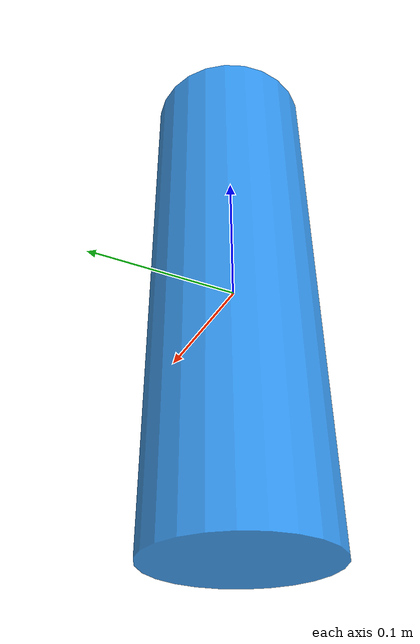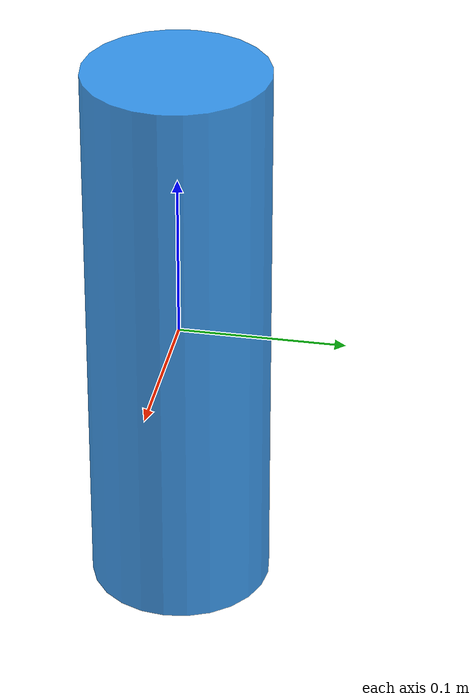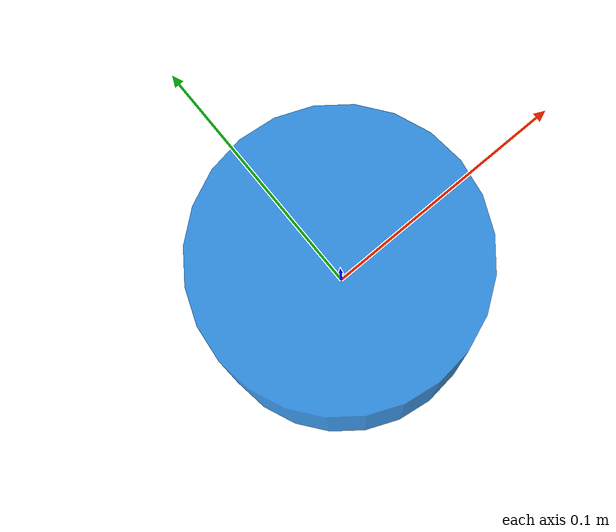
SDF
<?xml version="1.0"?>
<sdf version="1.9">
  <model name="cylinder_r055_h034_static">
    <static>true</static>
    <link name="body">
      <gravity>false</gravity>
      <inertial>
        <mass>1.0</mass>
        <inertia>
          <ixx>0.010759</ixx>
          <iyy>0.010759</iyy>
          <izz>0.001513</izz>
          <ixy>0</ixy>
          <ixz>0</ixz>
          <iyz>0</iyz>
        </inertia>
      </inertial>
      <collision name="collision">
        <geometry>
          <cylinder>
            <radius>0.055</radius>
            <length>0.34</length>
          </cylinder>
        </geometry>
        <surface>
          <friction>
            <ode>
              <mu>1.0</mu>
              <mu2>1.0</mu2>
            </ode>
          </friction>
          <bounce>
            <restitution_coefficient>0.0</restitution_coefficient>
          </bounce>
        </surface>
      </collision>
      <visual name="visual">
        <geometry>
          <cylinder>
            <radius>0.055</radius>
            <length>0.34</length>
          </cylinder>
        </geometry>
        <material>
          <ambient>0.10 0.55 0.95 0.85</ambient>
          <diffuse>0.10 0.55 0.95 0.85</diffuse>
        </material>
      </visual>
    </link>
  </model>
</sdf>
